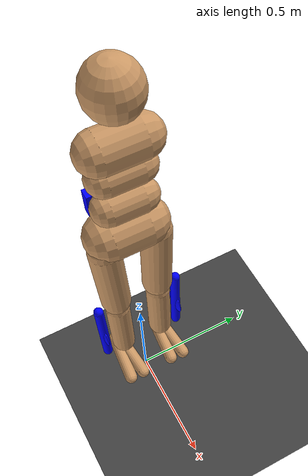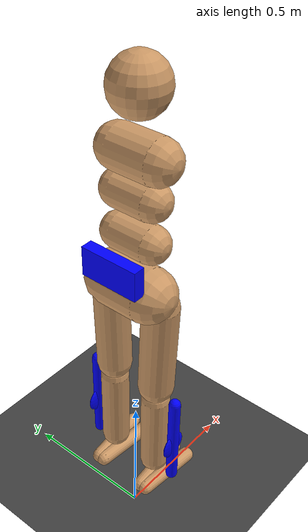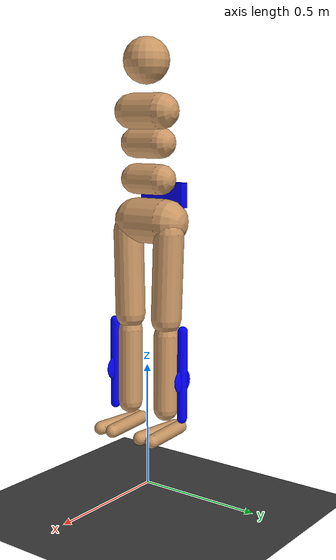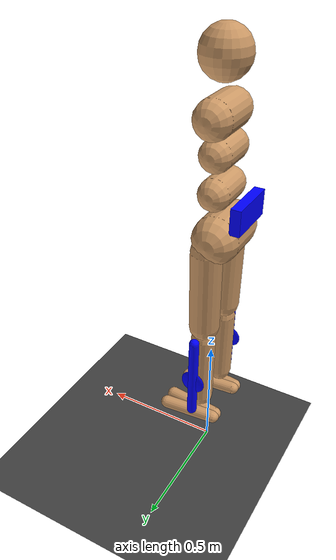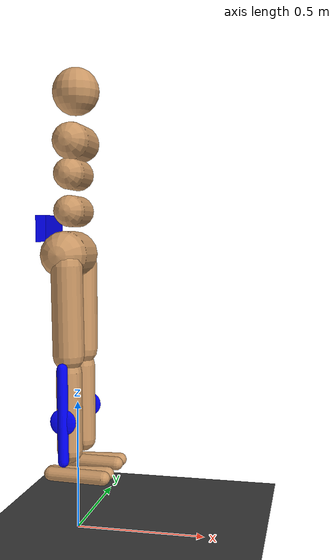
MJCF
<mujoco model="humanoid">

  <statistic extent="2" center="0 0 1"/>

  <option timestep=".005"/>

  <asset>
        <texture type="skybox" builtin="gradient" rgb1=".4 .5 .6" rgb2="0 0 0"
            width="100" height="100"/>
        <texture builtin="flat" height="1278" mark="cross" markrgb="1 1 1" name="texgeom" random="0.01" rgb1="0.8 0.6 0.4" rgb2="0.8 0.6 0.4" type="cube" width="127"/>
        <material name="self" texture="texgeom" texuniform="true"/>ss
        <material name='grid' reflectance='0.000000' texrepeat='1 1' texture='texplane' texuniform='true'/>
        <texture builtin='checker' height='512' name='texplane' rgb1='0.2 0.2 0.2' rgb2='0.3 0.3 0.3' type='2d' width='512'/>
  </asset>

  <default>
    <motor ctrlrange="-1 1" ctrllimited="true"/>
    <default class="body">
      <geom  type="capsule" condim="1" friction=".7" solimp=".9 .99 .003" solref=".015 1" material="self"/>
      <joint type="hinge" damping=".2" stiffness="1" armature=".01" limited="true" solimplimit="0 .99 .01"/>
      <default class="big_joint">
        <joint damping="5" stiffness="10"/>
        <default class="big_stiff_joint">
          <joint stiffness="20"/>
        </default>
      </default>
      <site size=".04" group="3"/>
      <default class="force-torque">
        <site type="box" size=".01 .01 .02" rgba="1 0 0 1" />
      </default>
      <default class="touch">
        <site type="capsule" rgba="0 0 1 .3"/>
      </default>
    </default>
  </default>

  <worldbody>
    <body name="floor" pos="0 0 0" childclass="body">
      <geom name="floor" type="plane" conaffinity="1" size="100 100 .2" material="grid"/>
    </body>
    <body name="torso" pos="0 0 1.5" childclass="body">
      <light name="top" pos="0 0 2" mode="trackcom"/>
      <camera name="back" pos="-3 0 1" xyaxes="0 -1 0 1 0 2" mode="trackcom"/>
      <camera name="side" pos="0 -3 1" xyaxes="1 0 0 0 1 2" mode="trackcom"/>
      <freejoint name="root"/>
      <site name="root" class="force-torque"/>
      <geom name="torso" fromto="0 -.07 0 0 .07 0" size=".07"/>
      <geom name="upper_waist" fromto="-.01 -.06 -.12 -.01 .06 -.12" size=".06"/>
      <site name="torso" class="touch" type="box" pos="0 0 -.05" size=".075 .14 .13"/>
      <body name="head" pos="0 0 .19">
        <geom name="head" type="sphere" size=".09"/>
        <site name="head" class="touch" type="sphere" size=".091"/>
        <camera name="egocentric" pos=".09 0 0" xyaxes="0 -1 0 .1 0 1" fovy="80"/>
      </body>
      <body name="lower_waist" pos="-.01 0 -.260" quat="1.000 0 -.002 0">
        <geom name="lower_waist" fromto="0 -.06 0 0 .06 0" size=".06"/>
        <site name="lower_waist" class="touch" size=".061 .06" zaxis="0 1 0"/>
        <joint name="abdomen_z" pos="0 0 .065" axis="0 0 1" range="-45 45" class="big_stiff_joint"/>
        <joint name="abdomen_y" pos="0 0 .065" axis="0 1 0" range="-75 30" class="big_joint"/>
        <body name="pelvis" pos="0 0 -.165" quat="1.000 0 -.002 0">
          <joint name="abdomen_x" pos="0 0 .1" axis="1 0 0" range="-35 35" class="big_joint"/>
          <geom name="butt" fromto="-.02 -.07 0 -.02 .07 0" size=".09"/>

          <geom name="fanny_pack_exo" pos="-0.1 0.0 0.1" type='box' size="0.02 0.1 0.05" rgba='0. 0. 1. 1.'/>

          <site name="butt" class="touch" size=".091 .07" pos="-.02 0 0" zaxis="0 1 0"/>
          <body name="right_thigh" pos="0 -.1 -.04">
            <site name="right_hip" class="force-torque"/>
            <joint name="right_hip_x" axis="1 0 0" range="-25 5"   class="big_joint"/>
            <joint name="right_hip_z" axis="0 0 1" range="-60 35"  class="big_joint"/>
            <joint name="right_hip_y" axis="0 1 0" range="-110 20" class="big_stiff_joint"/>
            <geom name="right_thigh" fromto="0 0 0 0 .01 -.34" size=".06"/>
            <site name="right_thigh" class="touch" pos="0 .005 -.17" size=".061 .17" zaxis="0 -1 34"/>
            <body name="right_shin" pos="0 .01 -.403">
              <site name="right_knee" class="force-torque" pos="0 0 .02"/>
              <joint name="right_knee" pos="0 0 .02" axis="0 -1 0" range="-160 2"/>
              <geom name="right_shin" fromto="0 0 0 0 0 -.3"  size=".049"/>

              <geom name="right_shin_exo_rod" pos="0. -0.08 -0.15" size="0.02 0.175" rgba="0. 0. 1. 1."/>
              <geom name="right_shin_exo_circle" type="ellipsoid" pos="0. -0.08 -0.175" size="0.05 0.01 0.05" rgba="0. 0. 1. 1."/>

              <site name="right_shin" class="touch" pos="0 0 -.15" size=".05 .15"/>
              <body name="right_foot" pos="0 0 -.39">
                <site name="right_ankle" class="force-torque"/>

                <joint name="right_ankle_y" pos="0 0 .08" axis="0 1 0"   range="-50 50" stiffness="6"/>
                <joint name="right_ankle_x" pos="0 0 .04" axis="1 0 .5" range="-50 50" stiffness="3"/>

                <geom name="right_right_foot" fromto="-.07 -.02 0 .14 -.04 0" size=".027"/>
                <geom name="left_right_foot" fromto="-.07 0 0 .14  .02 0" size=".027"/>

                <site name="right_right_foot" class="touch" pos=".035 -.03 0" size=".03 .11" zaxis="21 -2 0"/>
                <site name="left_right_foot" class="touch" pos=".035 .01 0" size=".03 .11" zaxis="21 2 0"/>

              </body>
            </body>
          </body>
          <body name="left_thigh" pos="0 .1 -.04">
            <site name="left_hip" class="force-torque"/>
            <joint name="left_hip_x" axis="-1 0 0" range="-25 5"  class="big_joint"/>
            <joint name="left_hip_z" axis="0 0 -1" range="-60 35" class="big_joint"/>
            <joint name="left_hip_y" axis="0 1 0" range="-120 20" class="big_stiff_joint"/>
            <geom name="left_thigh" fromto="0 0 0 0 -.01 -.34" size=".06"/>
            <site name="left_thigh" class="touch" pos="0 -.005 -.17" size=".061 .17" zaxis="0 1 34"/>
            <body name="left_shin" pos="0 -.01 -.403">
              <site name="left_knee" class="force-torque" pos="0 0 .02"/>
              <joint name="left_knee" pos="0 0 .02" axis="0 -1 0" range="-160 2"/>
              <geom name="left_shin" fromto="0 0 0 0 0 -.3"  size=".049"/>

              <geom name="left_shin_exo_rod" pos="0. 0.08 -0.15" size="0.02 0.175" rgba="0. 0. 1. 1."/>
              <geom name="left_shin_exo_circle" type="ellipsoid" pos="0. 0.08 -0.175" size="0.05 0.01 0.05" rgba="0. 0. 1. 1."/>

              <site name="left_shin" class="touch"  pos="0 0 -.15" size=".05 .15"/>
              <body name="left_foot" pos="0 0 -.39">
                <site name="left_ankle" class="force-torque"/>
                <joint name="left_ankle_y" pos="0 0 .08" axis="0 1 0"   range="-50 50" stiffness="6"/>
                <joint name="left_ankle_x" pos="0 0 .04" axis="1 0 .5" range="-50 50" stiffness="3"/>
                <geom name="left_left_foot" fromto="-.07 .02 0 .14 .04 0" size=".027"/>
                <geom name="right_left_foot" fromto="-.07 0 0 .14  -.02 0" size=".027"/>

                <site name="right_left_foot" class="touch" pos=".035 -.01 0" size=".03 .11" zaxis="21 -2 0"/>
                <site name="left_left_foot" class="touch" pos=".035 .03 0" size=".03 .11" zaxis="21 2 0"/>
              </body>
            </body>
          </body>
        </body>
      </body>
    </body>
  </worldbody>

  <actuator>
    <motor name="abdomen_y"       gear="40"  joint="abdomen_y"/>
    <motor name="abdomen_z"       gear="40"  joint="abdomen_z"/>
    <motor name="abdomen_x"       gear="40"  joint="abdomen_x"/>
    <motor name="right_hip_x"     gear="40"  joint="right_hip_x"/> <!-- roll -->
    <motor name="right_hip_z"     gear="40"  joint="right_hip_z"/> <!-- yaw -->
    <motor name="right_hip_y"     gear="120" joint="right_hip_y"/> <!-- pitch -->
    <motor name="right_knee"      gear="80"  joint="right_knee"/> <!-- pitch -->
    <motor name="right_ankle_y"   gear="20"  joint="right_ankle_y"/> <!-- pitch -->
    <motor name="right_ankle_x"   gear="20"  joint="right_ankle_x"/> <!-- roll -->
    <motor name="left_hip_x"      gear="40"  joint="left_hip_x"/>
    <motor name="left_hip_z"      gear="40"  joint="left_hip_z"/>
    <motor name="left_hip_y"      gear="120" joint="left_hip_y"/>
    <motor name="left_knee"       gear="80"  joint="left_knee"/>
    <motor name="left_ankle_y"    gear="20"  joint="left_ankle_y"/>
    <motor name="left_ankle_x"    gear="20"  joint="left_ankle_x"/>
  </actuator>

  <equality>
    <weld name='world_root' active="true" body1='floor' body2='torso' relpose="0. 0. 2. 1. 0 0 0"/>
    <joint name="abdomen_y" active="true" joint1="abdomen_y"/>
    <joint name="abdomen_z" active="true" joint1="abdomen_z"/>
    <joint name="abdomen_x" active="true" joint1="abdomen_x"/>
  </equality>

  <sensor>
    <subtreelinvel name="torso_subtreelinvel" body="torso"/>
    <accelerometer name="torso_accel"    site="root"/>
    <velocimeter name="torso_vel"        site="root"/>
    <gyro name="torso_gyro"              site="root"/>

    <force name="left_ankle_force"       site="left_ankle"/>
    <force name="right_ankle_force"      site="right_ankle"/>
    <force name="left_knee_force"        site="left_knee"/>
    <force name="right_knee_force"       site="right_knee"/>
    <force name="left_hip_force"         site="left_hip"/>
    <force name="right_hip_force"        site="right_hip"/>

    <torque name="left_ankle_torque"     site="left_ankle"/>
    <torque name="right_ankle_torque"    site="right_ankle"/>
    <torque name="left_knee_torque"      site="left_knee"/>
    <torque name="right_knee_torque"     site="right_knee"/>
    <torque name="left_hip_torque"       site="left_hip"/>
    <torque name="right_hip_torque"      site="right_hip"/>

    <touch name="torso_touch"            site="torso"/>
    <touch name="head_touch"             site="head"/>
    <touch name="lower_waist_touch"      site="lower_waist"/>
    <touch name="butt_touch"             site="butt"/>
    <touch name="right_thigh_touch"      site="right_thigh"/>
    <touch name="right_shin_touch"       site="right_shin"/>
    <touch name="right_right_foot_touch" site="right_right_foot"/>
    <touch name="left_right_foot_touch"  site="left_right_foot"/>
    <touch name="left_thigh_touch"       site="left_thigh"/>
    <touch name="left_shin_touch"        site="left_shin"/>
    <touch name="right_left_foot_touch"  site="right_left_foot"/>
    <touch name="left_left_foot_touch"   site="left_left_foot"/>

  </sensor>

</mujoco>
